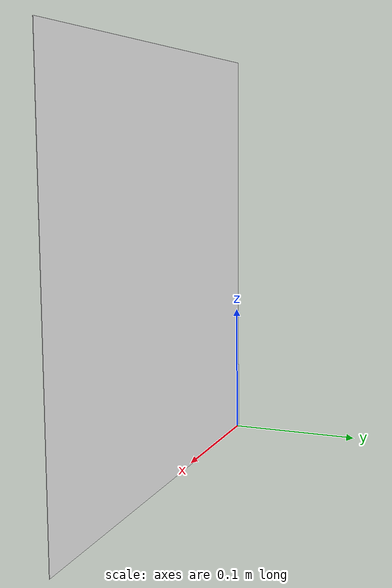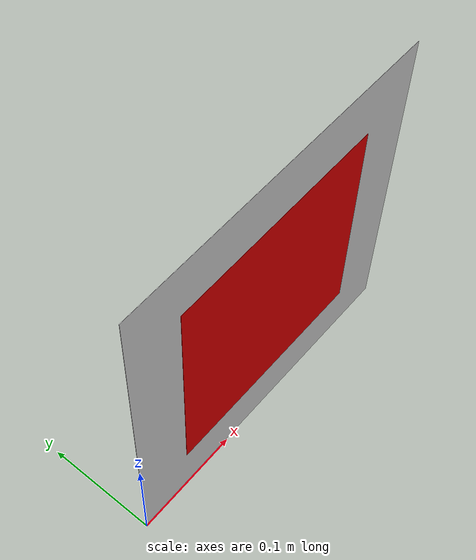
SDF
<?xml version="1.0" ?>
<sdf version="1.5">
  <model name="BchThin_0000">
  <static>true</static>
    <link name="tag">
      <pose>0.15 0.0 0.15 1.57079632679 0 0</pose>
      <visual name="visual">
        <cast_shadows>false</cast_shadows>
        <geometry>
          <plane>
            <normal>0 0 1</normal>
            <size>0.20 0.20</size>
          </plane>
        </geometry>
        <material>
          <ambient>1 0 0 1</ambient>
          <diffuse>1 0 0 1</diffuse>
        </material>
      </visual>
    </link>
    <link name="frame">
      <pose>0.15 0.001 0.15 1.57079632679 0 0</pose>
      <visual name="visual">
        <cast_shadows>false</cast_shadows>
        <geometry>
          <plane>
            <normal>0 0 1</normal>
            <size>0.30 0.30</size>
          </plane>
        </geometry>
        <material>
          <script>
	    <uri>file://media/materials/scripts/gazebo.material</uri>
	    <name>Gazebo/White</name>
          </script>
        </material>
      </visual>
    </link>
  </model>
</sdf>
